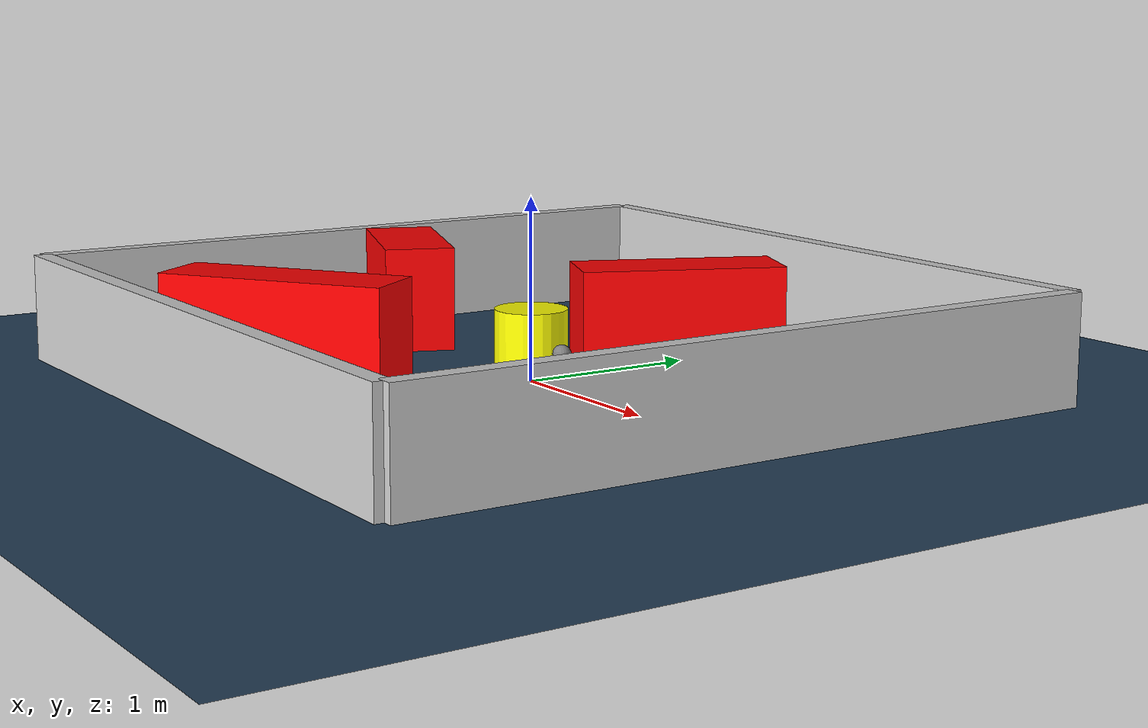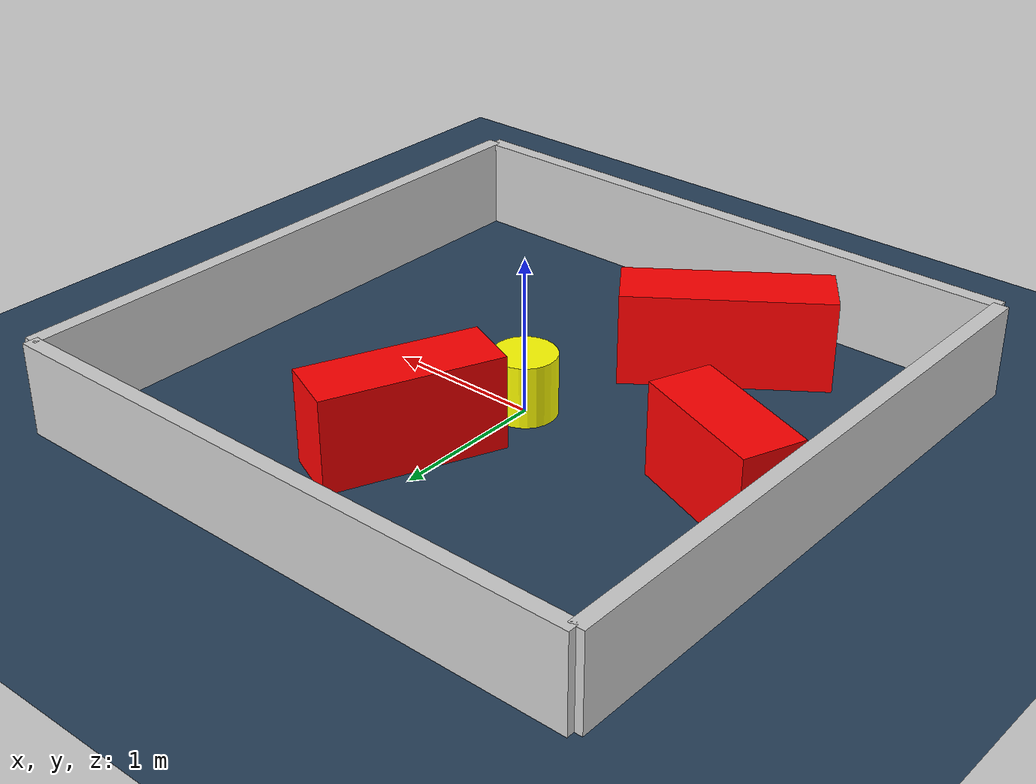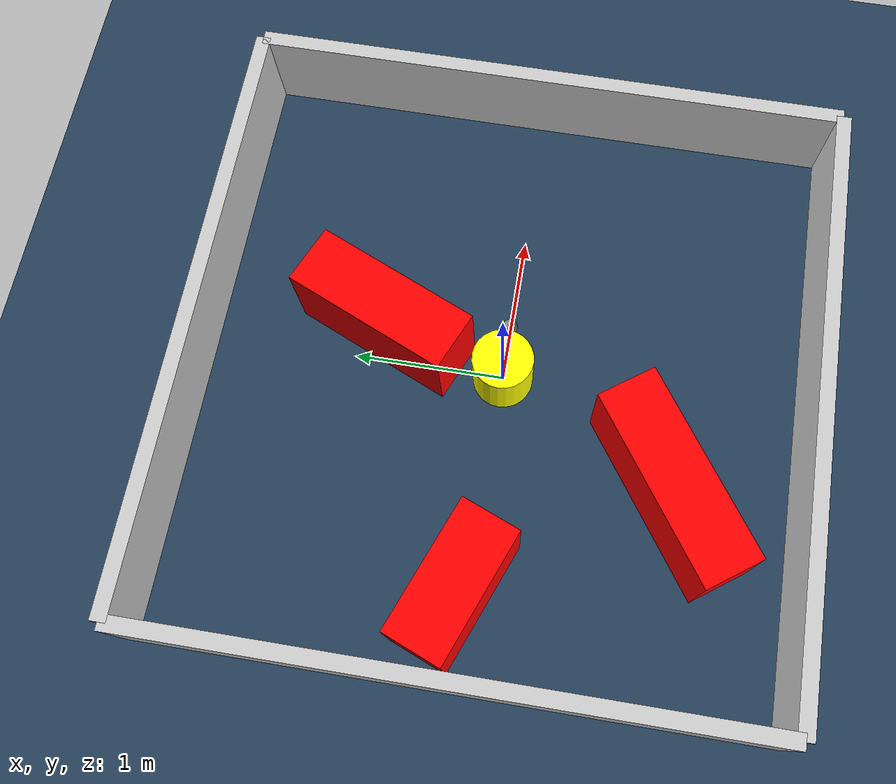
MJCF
<?xml version="1.0" ?>
<mujoco model="generated_environment">
  <option timestep="0.01" integrator="RK4" cone="elliptic"/>
  <default>
    <geom density="1"/>
  </default>
  <asset>
    <texture builtin="gradient" height="3072" rgb1="0.3 0.5 0.7" rgb2="0 0 0" type="skybox" width="512"/>
    <texture builtin="checker" height="300" mark="edge" markrgb="0.8 0.8 0.8" name="groundplane" rgb1="0.2 0.3 0.4" rgb2="0.1 0.2 0.3" type="2d" width="300"/>
    <material name="groundplane" reflectance="0.2" texrepeat="5 5" texture="groundplane" texuniform="true"/>
    <material name="robot" rgba="0.0 1.0 0.0 1"/>
  </asset>
  <worldbody>
    <light dir="0 0 -1" directional="true" pos="0 0 1.5"/>
    <geom condim="4" friction="1.0 0.005 0.001" material="groundplane" name="floor" size="0 0 0.05" type="plane"/>
    <body name="walls">
      <geom name="wall_1" condim="4" pos="-2.0 0.0 0.3" rgba="0.800000011920929 0.800000011920929 0.800000011920929 1.0" size="0.05 2.0 0.3" type="box"/>
      <geom name="wall_2" condim="4" pos="2.0 0.0 0.3" rgba="0.800000011920929 0.800000011920929 0.800000011920929 1.0" size="0.05 2.0 0.3" type="box"/>
      <geom name="wall_3" condim="4" pos="0.0 -2.0 0.3" rgba="0.800000011920929 0.800000011920929 0.800000011920929 1.0" size="2.0 0.05 0.3" type="box"/>
      <geom name="wall_4" condim="4" pos="0.0 2.0 0.3" rgba="0.800000011920929 0.800000011920929 0.800000011920929 1.0" size="2.0 0.05 0.3" type="box"/>
    </body>
    <body name="robot">
      <joint name="joint_x" type="slide" pos="0 0 0" axis="1 0 0"/>
      <joint name="joint_y" type="slide" pos="0 0 0" axis="0 1 0"/>
      <geom name="robot" type="sphere" pos="0.3 0.0 0.2" size="0.05" mass="5." friction="1.0 0.005 0.0001" condim="4" rgba="0.5 0.5 0.5 1.0"/>
      <site name="sensor_ball"/>
    </body>
    <body name="obstacle_movable_1">
      <geom name="obstacle_movable_1" condim="4" pos="0.0 0.0 0.2" euler="0 0 0.0" friction="1.0 0.005 0.001" rgba="1.0 1.0 0.0 1.0" size="0.2 0.2 0.0" type="cylinder" mass="0.1"/>
      <joint type="free"/>
    </body>
    <body name="obstacle_2_static">
      <geom name="obstacle_2_static" condim="4" pos="0.21463630293783686 0.817187947719402 0.3" euler="0 0 246.90415746991832" friction="1.0 0.005 0.001" rgba="1 0 0 1" size="0.563814922127592 0.2 0.3" type="box"/>
    </body>
    <body name="obstacle_3_static">
      <geom name="obstacle_3_static" condim="4" pos="-0.6252816096914674 -1.1621002764748956 0.3" euler="0 0 215.5693255564416" friction="1.0 0.005 0.001" rgba="1 0 0 1" size="0.6558612255040779 0.2 0.3" type="box"/>
    </body>
    <body name="obstacle_4_static">
      <geom name="obstacle_4_static" condim="4" pos="-1.4498576657978095 0.06262881037061008 0.3" euler="0 0 338.78155719021254" friction="1.0 0.005 0.001" rgba="1 0 0 1" size="0.44953711684691455 0.2 0.3" type="box"/>
    </body>
  </worldbody>
  <actuator>
    <motor name="actuator_x" joint="joint_x" gear="1" ctrlrange="-1 1"/>
    <motor name="actuator_y" joint="joint_y" gear="1" ctrlrange="-1 1"/>
  </actuator>
</mujoco>
